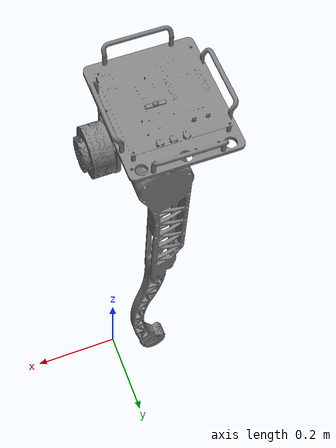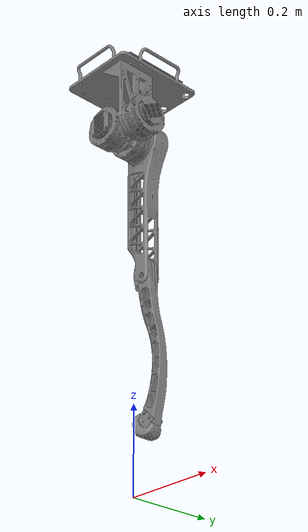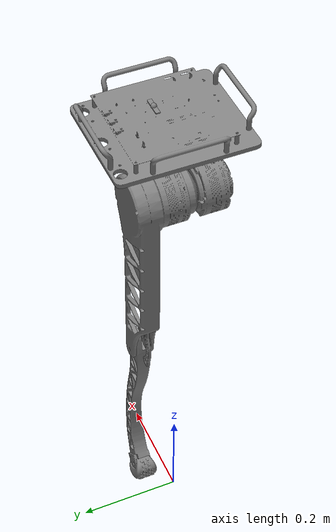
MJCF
<mujoco model="qhrr0">
  <compiler angle="radian" coordinate="local" meshdir="meshes"/>
  <option
        timestep="0.001"
        gravity="0 0 -9.81"
        integrator="RK4"
        cone="elliptic"
        impratio="100"
        tolerance="1e-10" >
        <flag warmstart="enable" energy="enable" contact="enable" frictionloss="enable"/>
    </option>
  <asset>
    <mesh name="base_link_mesh" file="base_link.STL"/>
    <mesh name="IMU_mesh" file="IMU.STL"/>
    <mesh name="RL_hip_mesh" file="RL_hip.STL"/>
    <mesh name="RL_thigh_mesh" file="RL_thigh.STL"/>
    <mesh name="RL_calf_mesh" file="RL_calf.STL"/>
    <material name="foot_gray" rgba="0.5 0.5 0.5 1"/>
  </asset>

  <worldbody>
    <body name="base_link" pos="0 0 0.9" euler="0 0 0">
      <inertial pos="-0.046389 0.040203 0.13076"
                mass="2.2134457"
                fullinertia="0.0379286 0.0384235 0.0183267 -0.0037565 -0.0109204 0.0059884"/>
        <freejoint/>
      <geom name="base_link_visual" type="mesh" mesh="base_link_mesh" contype="0" conaffinity="0" group="1"/>
      <geom name="base_link_collision_1" type="box" pos="-0.067 0.056 0.172" size="0.11 0.13 0.023" group="3"/>
      <geom name="base_link_collision_2" type="cylinder" pos="0.04 0 0" euler="0 1.57079632679 0" size="0.05 0.0247" group="3"/>
      <site name="base_link_imu" pos="0 0 0" quat="1 0 0 0" size="0.005"/>

      <body name="IMU" pos="-0.0492 0.06681 0.18441">
        <inertial pos="-6.93889390390723E-18 -1.38777878078145E-17 -0.001"
                  mass="0.00069121133470082"
                  fullinertia="3.55715892103795E-09 7.03575361619189E-08 7.34538875264897E-08 -5.94192264742187E-25 -5.53313020213853E-25 -4.38238528215576E-29"/>
        <geom name="IMU_visual" type="mesh" mesh="IMU_mesh" contype="0" conaffinity="0" group="1"/>
        <site name="imu" pos="0 0 0" quat="1 0 0 0" size="0.005"/>
      </body>

      <body name="RL_hip" pos="0 0 0">
        <inertial pos="-0.044193 -0.013101 0.00034491"
                  mass="0.9680516"
                  fullinertia="0.0017373 0.0012868 0.0018772 -1.92E-05 2.8E-06 -5.3E-06"/>
        <joint name="RL_hip_roll" type="hinge" axis="1 0 0" range="-1.44 1.44" armature="0.0214816" frictionloss="0.5"/>
        <geom name="RL_hip_visual" type="mesh" mesh="RL_hip_mesh" contype="0" conaffinity="0" group="1"/>
        <geom name="RL_hip_collision" type="cylinder" pos="-0.0575 -0.0265 0" euler="1.57079632679 0 0" size="0.05 0.03" group="3"/>

        <body name="RL_thigh" pos="-0.058 0.0082 0">
          <inertial pos="-0.0085918 0.075599 -0.095236"
                    mass="1.96881"
                    fullinertia="0.0376551 0.029444 0.0111253 -0.0009213 0.001832 -0.0100478"/>
          <joint name="RL_hip_pitch" type="hinge" axis="0 -1 0" range="-2.98 2.98" armature="0.0214816" frictionloss="0.5"/>
          <geom name="RL_thigh_visual" type="mesh" mesh="RL_thigh_mesh" contype="0" conaffinity="0" group="1"/>
          <geom name="RL_thigh_collision_1" type="box" pos="-0.018 0.089 -0.189" size="0.036 0.023 0.125"  group="3"/>
          <geom name="RL_thigh_collision_2" type="cylinder" pos="0 0.062 0" euler="1.57079632679 0 0" size="0.053 0.05"  group="3"/>

          <body name="RL_calf" pos="0 0.089 -0.35">
            <inertial pos="0.0095241 4.9977E-05 -0.17708"
                      mass="0.605521"
                      fullinertia="0.0314859 0.0316893 0.0002809 1E-07 -0.001301 -9E-07"/>
            <joint name="RL_knee_pitch" type="hinge" axis="0 -1 0" range="0.29 2.79" armature="0.0214816" frictionloss="0.5"/>
            <geom name="RL_calf_visual" type="mesh" mesh="RL_calf_mesh" contype="0" conaffinity="0" group="1"/>
            <geom name="RL_calf_collision_1" type="box" pos="0.01 0 -0.1" euler="0 -0.2 0" size="0.022 0.013 0.08" group="3"/>
            <geom name="RL_calf_collision_2" type="box" pos="0.023 0 -0.26" euler="0 0.14 0" size="0.020 0.013 0.065" group="3"/>
            <body name="foot_link" pos="0 0 -0.33" euler="0 0 0">
              <inertial pos="0.0 0.0 -0.035"
                        mass="0.06"
                        fullinertia="9.6e-06 9.6e-06 9.6e-06 0 0 0"/>
              <geom name="foot_collision" type="sphere" pos="-0.012 0.0 -0.037" size="0.03" priority="1" condim="6" friction="0.8 0.03 0.02" group="3" />
            </body>
          </body>
        </body>
      </body>
    </body>
  </worldbody>

    <actuator>
      <motor ctrlrange="-70 70" ctrllimited="true" name="RL_hip_roll" joint="RL_hip_roll"/>
      <motor ctrlrange="-70 70" ctrllimited="true" name="RL_hip_pitch" joint="RL_hip_pitch"/>
      <motor ctrlrange="-70 70" ctrllimited="true" name="RL_knee_pitch" joint="RL_knee_pitch"/>
  </actuator>

  <sensor>
    <framequat name="base_link_quat" objtype="site" objname="base_link_imu"/>
    <gyro name="base_link_gyro" site="base_link_imu"/>
    <framequat name="imu_quat" objtype="site" objname="imu"/>
    <gyro name="imu_gyro" site="imu"/>
  </sensor>
</mujoco>
